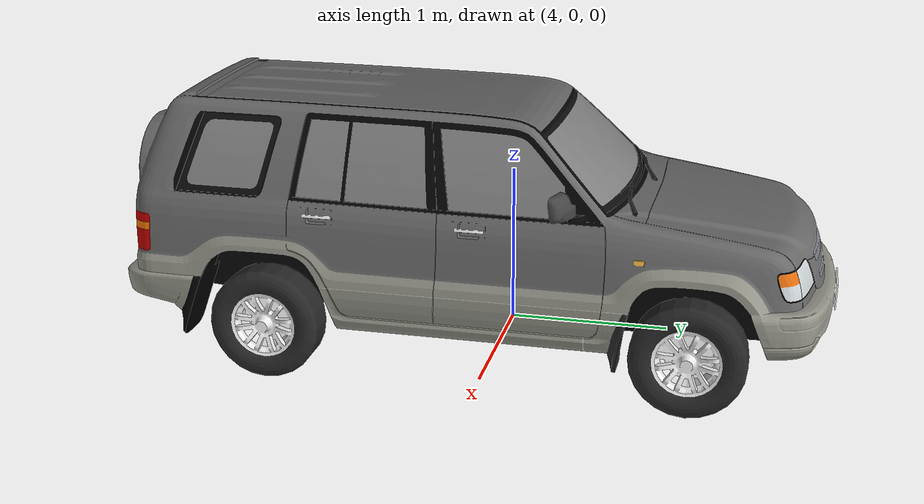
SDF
<?xml version='1.0'?>
<sdf version="1.5">
<model name="car_121">
  <pose>4.5 2 0 0 0 3.14</pose>
  <static>true</static>
    <link name="link">
      <inertial>
        <mass>1.0</mass>
        <inertia> <!-- interias are tricky to compute -->
          <!-- http://answers.gazebosim.org/question/4372/the-inertia-matrix-explained/ -->
          <ixx>0.083</ixx>       <!-- for a box: ixx = 0.083 * mass * (y*y + z*z) -->
          <ixy>0.0</ixy>         <!-- for a box: ixy = 0 -->
          <ixz>0.0</ixz>         <!-- for a box: ixz = 0 -->
          <iyy>0.083</iyy>       <!-- for a box: iyy = 0.083 * mass * (x*x + z*z) -->
          <iyz>0.0</iyz>         <!-- for a box: iyz = 0 -->
          <izz>0.083</izz>       <!-- for a box: izz = 0.083 * mass * (x*x + y*y) -->
        </inertia>
      </inertial>
      <collision name="collision">
        <geometry>
          <box>
            <size>1 1 1</size>
          </box>
        </geometry>
      </collision>
      <visual name="visual">
        <cast_shadows>false</cast_shadows>
	<geometry>
          <mesh>
            <uri>model://car_121/meshes/car_121.dae</uri>
            <scale>0.035 0.035 0.035</scale>
          </mesh>
        </geometry>
      </visual>
    </link>
  </model>
</sdf>
